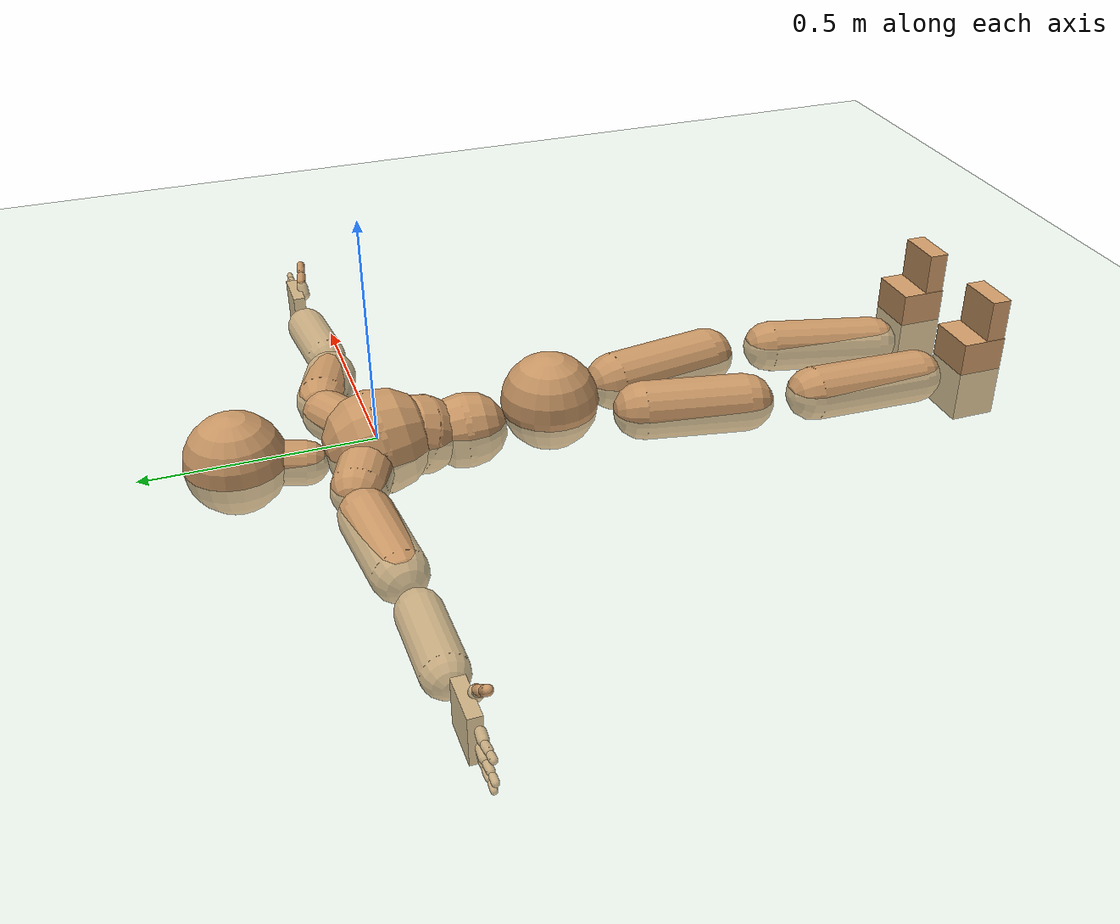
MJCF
<mujoco model="humanoid">
  <compiler coordinate="local"/>
  <default>
    <joint damping="0.0" armature="0.01" stiffness="0.0" limited="true"/>
    <geom conaffinity="1" condim="3" contype="7" margin="0.001" rgba="0.8 0.6 .4 1"/>
  </default>
  <asset>
    <texture type="skybox" builtin="gradient" rgb1=".4 .5 .6" rgb2="0 0 0" width="100" height="100"/>
    <texture builtin="flat" height="1278" mark="cross" markrgb="1 1 1" name="texgeom" random="0.01" rgb1="0.8 0.6 0.4" rgb2="0.8 0.6 0.4" type="cube" width="127"/>
    <texture builtin="checker" height="100" name="texplane" rgb1="0 0 0" rgb2="0.8 0.8 0.8" type="2d" width="100"/>
    <material name="MatPlane" reflectance="0.5" shininess="1" specular="1" texrepeat="60 60" texture="texplane"/>
    <material name="geom" texture="texgeom" texuniform="true"/>
  </asset>
  <worldbody>
    <light cutoff="100" diffuse="1 1 1" dir="-0 0 -1.3" directional="true" exponent="1" pos="0 0 1.3" specular=".1 .1 .1"/>
    <geom conaffinity="1" condim="3" name="floor" pos="0 0 0" rgba="0.8 0.9 0.8 1" size="100 100 .2" type="plane" material="MatPlane"/>
    <body name="Pelvis" pos="0.0029 -0.3917 0.0132">
      <freejoint name="Pelvis"/>
      <geom type="sphere" contype="1" conaffinity="1" density="4629.6296296296305" size="0.1095" pos="0.0000 0.0000 0.0000" name="Pelvis"/>
      <body name="L_Hip" pos="0.0608 -0.0999 -0.0266">
        <joint name="L_Hip_x" type="hinge" pos="0 0 0" axis="1 0 0" user="250 2.5 1 500 10 2" armature="0.01" range="-90.0000 90.0000" damping="0" stiffness="0"/>
        <joint name="L_Hip_y" type="hinge" pos="0 0 0" axis="0 1 0" user="250 2.5 1 500 10 2" armature="0.01" range="-90.0000 90.0000" damping="0" stiffness="0"/>
        <joint name="L_Hip_z" type="hinge" pos="0 0 0" axis="0 0 1" user="250 2.5 1 500 10 2" armature="0.01" range="-90.0000 90.0000" damping="0" stiffness="0"/>
        <geom type="capsule" contype="1" conaffinity="1" density="2040.816327" fromto="0.0134 -0.0824 -0.0005 0.0535 -0.3294 -0.0019" size="0.0664" name="L_Hip"/>
        <body name="L_Knee" pos="0.0669 -0.4118 -0.0024">
          <joint name="L_Knee_x" type="hinge" pos="0 0 0" axis="1 0 0" user="250 2.5 1 500 10 2" armature="0.01" range="-180.0000 180.0000" damping="0" stiffness="0"/>
          <joint name="L_Knee_y" type="hinge" pos="0 0 0" axis="0 1 0" user="250 2.5 1 500 10 2" armature="0.01" range="-5.6250 5.6250" damping="0" stiffness="0"/>
          <joint name="L_Knee_z" type="hinge" pos="0 0 0" axis="0 0 1" user="250 2.5 1 500 10 2" armature="0.01" range="-5.6250 5.6250" damping="0" stiffness="0"/>
          <geom type="capsule" contype="1" conaffinity="1" density="1234.567901" fromto="-0.0096 -0.0893 -0.0068 -0.0384 -0.3572 -0.0272" size="0.06" name="L_Knee"/>
          <body name="L_Ankle" pos="-0.048 -0.4465 -0.034">
            <joint name="L_Ankle_x" type="hinge" pos="0 0 0" axis="1 0 0" user="150 2.5 1 500 10 2" armature="0.01" range="-90.0000 90.0000" damping="0" stiffness="0"/>
            <joint name="L_Ankle_y" type="hinge" pos="0 0 0" axis="0 1 0" user="150 2.5 1 500 10 2" armature="0.01" range="-90.0000 90.0000" damping="0" stiffness="0"/>
            <joint name="L_Ankle_z" type="hinge" pos="0 0 0" axis="0 0 1" user="150 2.5 1 500 10 2" armature="0.01" range="-90.0000 90.0000" damping="0" stiffness="0"/>
            <geom type="box" density="462.488307" pos="0.0476 -0.0333 0.0260" size="0.0572 0.0522 0.0985" quat="1.0000 0.0000 0.0000 0.0000" name="L_Ankle"/>
            <body name="L_Toe" pos="0.055 -0.0658 0.1346">
              <joint name="L_Toe_x" type="hinge" pos="0 0 0" axis="1 0 0" user="150 1 1 500 1 1" armature="0.01" range="-90.0000 90.0000" damping="0" stiffness="0"/>
              <joint name="L_Toe_y" type="hinge" pos="0 0 0" axis="0 1 0" user="150 1 1 500 1 1" armature="0.01" range="-45.0000 45.0000" damping="0" stiffness="0"/>
              <joint name="L_Toe_z" type="hinge" pos="0 0 0" axis="0 0 1" user="150 1 1 500 1 1" armature="0.01" range="-45.0000 45.0000" damping="0" stiffness="0"/>
              <geom type="box" density="423.126218" pos="-0.0074 0.0034 0.0293" size="0.0544 0.0231 0.0566" quat="1.0000 0.0000 0.0000 0.0000" name="L_Toe"/>
            </body>
          </body>
        </body>
      </body>
      <body name="R_Hip" pos="-0.0658 -0.1135 -0.0188">
        <joint name="R_Hip_x" type="hinge" pos="0 0 0" axis="1 0 0" user="250 2.5 1 500 10 2" armature="0.01" range="-90.0000 90.0000" damping="0" stiffness="0"/>
        <joint name="R_Hip_y" type="hinge" pos="0 0 0" axis="0 1 0" user="250 2.5 1 500 10 2" armature="0.01" range="-90.0000 90.0000" damping="0" stiffness="0"/>
        <joint name="R_Hip_z" type="hinge" pos="0 0 0" axis="0 0 1" user="250 2.5 1 500 10 2" armature="0.01" range="-90.0000 90.0000" damping="0" stiffness="0"/>
        <geom type="capsule" contype="1" conaffinity="1" density="2040.816327" fromto="-0.0110 -0.0784 -0.0025 -0.0440 -0.3137 -0.0102" size="0.0658" name="R_Hip"/>
        <body name="R_Knee" pos="-0.055 -0.3921 -0.0127">
          <joint name="R_Knee_x" type="hinge" pos="0 0 0" axis="1 0 0" user="250 2.5 1 500 10 2" armature="0.01" range="-180.0000 180.0000" damping="0" stiffness="0"/>
          <joint name="R_Knee_y" type="hinge" pos="0 0 0" axis="0 1 0" user="250 2.5 1 500 10 2" armature="0.01" range="-5.6250 5.6250" damping="0" stiffness="0"/>
          <joint name="R_Knee_z" type="hinge" pos="0 0 0" axis="0 0 1" user="250 2.5 1 500 10 2" armature="0.01" range="-5.6250 5.6250" damping="0" stiffness="0"/>
          <geom type="capsule" contype="1" conaffinity="1" density="1234.567901" fromto="0.0031 -0.0911 -0.0042 0.0124 -0.3644 -0.0166" size="0.0618" name="R_Knee"/>
          <body name="R_Ankle" pos="0.0154 -0.4555 -0.0208">
            <joint name="R_Ankle_x" type="hinge" pos="0 0 0" axis="1 0 0" user="150 1 1 500 10 2" armature="0.01" range="-90.0000 90.0000" damping="0" stiffness="0"/>
            <joint name="R_Ankle_y" type="hinge" pos="0 0 0" axis="0 1 0" user="150 1 1 500 10 2" armature="0.01" range="-90.0000 90.0000" damping="0" stiffness="0"/>
            <joint name="R_Ankle_z" type="hinge" pos="0 0 0" axis="0 0 1" user="150 1 1 500 10 2" armature="0.01" range="-90.0000 90.0000" damping="0" stiffness="0"/>
            <geom type="box" density="462.482206" pos="-0.0279 -0.0302 0.0153" size="0.0572 0.0522 0.0985" quat="1.0000 0.0000 0.0000 0.0000" name="R_Ankle"/>
            <body name="R_Toe" pos="-0.0442 -0.0655 0.1353">
              <joint name="R_Toe_x" type="hinge" pos="0 0 0" axis="1 0 0" user="150 1 1 500 1 1" armature="0.01" range="-90.0000 90.0000" damping="0" stiffness="0"/>
              <joint name="R_Toe_y" type="hinge" pos="0 0 0" axis="0 1 0" user="150 1 1 500 1 1" armature="0.01" range="-45.0000 45.0000" damping="0" stiffness="0"/>
              <joint name="R_Toe_z" type="hinge" pos="0 0 0" axis="0 0 1" user="150 1 1 500 1 1" armature="0.01" range="-45.0000 45.0000" damping="0" stiffness="0"/>
              <geom type="box" density="423.107508" pos="0.0163 0.0061 0.0180" size="0.0544 0.0231 0.0566" quat="1.0000 0.0000 0.0000 0.0000" name="R_Toe"/>
            </body>
          </body>
        </body>
      </body>
      <body name="Torso" pos="-0.0036 0.1194 -0.034">
        <joint name="Torso_x" type="hinge" pos="0 0 0" axis="1 0 0" user="500 5 1 500 10 2" armature="0.01" range="-60.0000 60.0000" damping="0" stiffness="0"/>
        <joint name="Torso_y" type="hinge" pos="0 0 0" axis="0 1 0" user="500 5 1 500 10 2" armature="0.01" range="-60.0000 60.0000" damping="0" stiffness="0"/>
        <joint name="Torso_z" type="hinge" pos="0 0 0" axis="0 0 1" user="500 5 1 500 10 2" armature="0.01" range="-60.0000 60.0000" damping="0" stiffness="0"/>
        <geom type="capsule" contype="1" conaffinity="1" density="2040.816327" fromto="0.0056 0.0659 -0.0037 0.0068 0.0805 -0.0046" size="0.0832" name="Torso"/>
        <body name="Spine" pos="0.0123 0.1464 -0.0083">
          <joint name="Spine_x" type="hinge" pos="0 0 0" axis="1 0 0" user="500 5 1 500 10 2" armature="0.01" range="-60.0000 60.0000" damping="0" stiffness="0"/>
          <joint name="Spine_y" type="hinge" pos="0 0 0" axis="0 1 0" user="500 5 1 500 10 2" armature="0.01" range="-60.0000 60.0000" damping="0" stiffness="0"/>
          <joint name="Spine_z" type="hinge" pos="0 0 0" axis="0 0 1" user="500 5 1 500 10 2" armature="0.01" range="-60.0000 60.0000" damping="0" stiffness="0"/>
          <geom type="capsule" contype="1" conaffinity="1" density="2040.816327" fromto="-0.0055 0.0280 0.0135 -0.0067 0.0342 0.0165" size="0.0879" name="Spine"/>
          <body name="Chest" pos="-0.0122 0.0622 0.03">
            <joint name="Chest_x" type="hinge" pos="0 0 0" axis="1 0 0" user="500 5 1 500 10 2" armature="0.01" range="-60.0000 60.0000" damping="0" stiffness="0"/>
            <joint name="Chest_y" type="hinge" pos="0 0 0" axis="0 1 0" user="500 5 1 500 10 2" armature="0.01" range="-60.0000 60.0000" damping="0" stiffness="0"/>
            <joint name="Chest_z" type="hinge" pos="0 0 0" axis="0 0 1" user="500 5 1 500 10 2" armature="0.01" range="-60.0000 60.0000" damping="0" stiffness="0"/>
            <geom type="capsule" contype="1" conaffinity="1" density="2040.816327" fromto="-0.0027 0.0557 -0.0067 -0.0033 0.0681 -0.0081" size="0.115" name="Chest"/>
            <body name="Neck" pos="-0.0144 0.1838 -0.0285">
              <joint name="Neck_x" type="hinge" pos="0 0 0" axis="1 0 0" user="150 1 1 250 50 4" armature="0.01" range="-180.0000 180.0000" damping="0" stiffness="0"/>
              <joint name="Neck_y" type="hinge" pos="0 0 0" axis="0 1 0" user="150 1 1 250 50 4" armature="0.01" range="-180.0000 180.0000" damping="0" stiffness="0"/>
              <joint name="Neck_z" type="hinge" pos="0 0 0" axis="0 0 1" user="150 1 1 250 50 4" armature="0.01" range="-180.0000 180.0000" damping="0" stiffness="0"/>
              <geom type="capsule" contype="1" conaffinity="1" density="1000" fromto="0.0057 0.0356 0.0047 0.0228 0.1425 0.0190" size="0.0481" name="Neck"/>
              <body name="Head" pos="0.0285 0.1781 0.0237">
                <joint name="Head_x" type="hinge" pos="0 0 0" axis="1 0 0" user="150 1 1 250 50 4" armature="0.01" range="-90.0000 90.0000" damping="0" stiffness="0"/>
                <joint name="Head_y" type="hinge" pos="0 0 0" axis="0 1 0" user="150 1 1 250 50 4" armature="0.01" range="-90.0000 90.0000" damping="0" stiffness="0"/>
                <joint name="Head_z" type="hinge" pos="0 0 0" axis="0 0 1" user="150 1 1 250 50 4" armature="0.01" range="-90.0000 90.0000" damping="0" stiffness="0"/>
                <geom type="sphere" contype="1" conaffinity="1" density="1000" size="0.1100" pos="0.0000 0.0000 0.0000" name="Head"/>
              </body>
            </body>
            <body name="L_Thorax" pos="0.0497 0.0944 -0.0045">
              <joint name="L_Thorax_x" type="hinge" pos="0 0 0" axis="1 0 0" user="200 2 1 500 50 4" armature="0.01" range="-180.0000 180.0000" damping="0" stiffness="0"/>
              <joint name="L_Thorax_y" type="hinge" pos="0 0 0" axis="0 1 0" user="200 2 1 500 50 4" armature="0.01" range="-180.0000 180.0000" damping="0" stiffness="0"/>
              <joint name="L_Thorax_z" type="hinge" pos="0 0 0" axis="0 0 1" user="200 2 1 500 50 4" armature="0.01" range="-180.0000 180.0000" damping="0" stiffness="0"/>
              <geom type="capsule" contype="1" conaffinity="1" density="1000" fromto="0.0274 0.0117 -0.0035 0.1096 0.0467 -0.0141" size="0.0558" name="L_Thorax"/>
              <body name="L_Shoulder" pos="0.137 0.0584 -0.0176">
                <joint name="L_Shoulder_x" type="hinge" pos="0 0 0" axis="1 0 0" user="200 2 1 500 50 4" armature="0.01" range="-180.0000 180.0000" damping="0" stiffness="0"/>
                <joint name="L_Shoulder_y" type="hinge" pos="0 0 0" axis="0 1 0" user="200 2 1 500 50 4" armature="0.01" range="-180.0000 180.0000" damping="0" stiffness="0"/>
                <joint name="L_Shoulder_z" type="hinge" pos="0 0 0" axis="0 0 1" user="200 2 1 500 50 4" armature="0.01" range="-180.0000 180.0000" damping="0" stiffness="0"/>
                <geom type="capsule" contype="1" conaffinity="1" density="1000" fromto="0.0549 -0.0158 -0.0102 0.2197 -0.0634 -0.0409" size="0.0598" name="L_Shoulder"/>
                <body name="L_Elbow" pos="0.2747 -0.0792 -0.0511">
                  <joint name="L_Elbow_x" type="hinge" pos="0 0 0" axis="1 0 0" user="150 1 1 150 10 2" armature="0.01" range="-720.0000 720.0000" damping="0" stiffness="0"/>
                  <joint name="L_Elbow_y" type="hinge" pos="0 0 0" axis="0 1 0" user="150 1 1 150 10 2" armature="0.01" range="-720.0000 720.0000" damping="0" stiffness="0"/>
                  <joint name="L_Elbow_z" type="hinge" pos="0 0 0" axis="0 0 1" user="150 1 1 150 10 2" armature="0.01" range="-720.0000 720.0000" damping="0" stiffness="0"/>
                  <geom type="capsule" contype="1" conaffinity="1" density="1000" fromto="0.0572 0.0053 0.0005 0.2287 0.0214 0.0020" size="0.0476" name="L_Elbow"/>
                  <body name="L_Wrist" pos="0.2859 0.0267 0.0025">
                    <joint name="L_Wrist_x" type="hinge" pos="0 0 0" axis="1 0 0" user="100 1 1 150 1 1" armature="0.01" range="-180.0000 180.0000" damping="0" stiffness="0"/>
                    <joint name="L_Wrist_y" type="hinge" pos="0 0 0" axis="0 1 0" user="100 1 1 150 1 1" armature="0.01" range="-180.0000 180.0000" damping="0" stiffness="0"/>
                    <joint name="L_Wrist_z" type="hinge" pos="0 0 0" axis="0 0 1" user="100 1 1 150 1 1" armature="0.01" range="-180.0000 180.0000" damping="0" stiffness="0"/>
                    <geom type="box" density="1218.746184" pos="0.0613 -0.0019 -0.0030" size="0.0563 0.0145 0.0535" quat="1.0000 0.0000 0.0000 0.0000" name="L_Wrist"/>
                    <body name="L_Index1" pos="0.1188 -0.0088 0.0227">
                      <joint name="L_Index1_x" type="hinge" pos="0 0 0" axis="1 0 0" user="100 10 1 150" armature="0.01" range="-180.0000 180.0000" damping="0" stiffness="0"/>
                      <joint name="L_Index1_y" type="hinge" pos="0 0 0" axis="0 1 0" user="100 10 1 150" armature="0.01" range="-180.0000 180.0000" damping="0" stiffness="0"/>
                      <joint name="L_Index1_z" type="hinge" pos="0 0 0" axis="0 0 1" user="100 10 1 150" armature="0.01" range="-180.0000 180.0000" damping="0" stiffness="0"/>
                      <geom type="capsule" contype="1" conaffinity="1" density="1000" fromto="0.0071 0.0006 0.0006 0.0283 0.0023 0.0024" size="0.0105" name="L_Index1"/>
                      <body name="L_Index2" pos="0.0354 0.0029 0.0031">
                        <joint name="L_Index2_x" type="hinge" pos="0 0 0" axis="1 0 0" user="100 10 1 150" armature="0.01" range="-180.0000 180.0000" damping="0" stiffness="0"/>
                        <joint name="L_Index2_y" type="hinge" pos="0 0 0" axis="0 1 0" user="100 10 1 150" armature="0.01" range="-180.0000 180.0000" damping="0" stiffness="0"/>
                        <joint name="L_Index2_z" type="hinge" pos="0 0 0" axis="0 0 1" user="100 10 1 150" armature="0.01" range="-180.0000 180.0000" damping="0" stiffness="0"/>
                        <geom type="capsule" contype="1" conaffinity="1" density="1000" fromto="0.0050 -0.0005 -0.0001 0.0199 -0.0021 -0.0003" size="0.0087" name="L_Index2"/>
                        <body name="L_Index3" pos="0.0249 -0.0026 -0.0003">
                          <joint name="L_Index3_x" type="hinge" pos="0 0 0" axis="1 0 0" user="100 10 1 150" armature="0.01" range="-180.0000 180.0000" damping="0" stiffness="0"/>
                          <joint name="L_Index3_y" type="hinge" pos="0 0 0" axis="0 1 0" user="100 10 1 150" armature="0.01" range="-180.0000 180.0000" damping="0" stiffness="0"/>
                          <joint name="L_Index3_z" type="hinge" pos="0 0 0" axis="0 0 1" user="100 10 1 150" armature="0.01" range="-180.0000 180.0000" damping="0" stiffness="0"/>
                          <geom type="capsule" contype="1" conaffinity="1" density="1000" fromto="0.0054 -0.0001 0.0003 0.0215 -0.0005 0.0013" size="0.0073" name="L_Index3"/>
                        </body>
                      </body>
                    </body>
                    <body name="L_Middle1" pos="0.1277 -0.0061 -0.0046">
                      <joint name="L_Middle1_x" type="hinge" pos="0 0 0" axis="1 0 0" user="100 10 1 150" armature="0.01" range="-180.0000 180.0000" damping="0" stiffness="0"/>
                      <joint name="L_Middle1_y" type="hinge" pos="0 0 0" axis="0 1 0" user="100 10 1 150" armature="0.01" range="-180.0000 180.0000" damping="0" stiffness="0"/>
                      <joint name="L_Middle1_z" type="hinge" pos="0 0 0" axis="0 0 1" user="100 10 1 150" armature="0.01" range="-180.0000 180.0000" damping="0" stiffness="0"/>
                      <geom type="capsule" contype="1" conaffinity="1" density="1000" fromto="0.0068 0.0002 -0.0009 0.0272 0.0007 -0.0035" size="0.0109" name="L_Middle1"/>
                      <body name="L_Middle2" pos="0.034 0.0009 -0.0044">
                        <joint name="L_Middle2_x" type="hinge" pos="0 0 0" axis="1 0 0" user="100 10 1 150" armature="0.01" range="-180.0000 180.0000" damping="0" stiffness="0"/>
                        <joint name="L_Middle2_y" type="hinge" pos="0 0 0" axis="0 1 0" user="100 10 1 150" armature="0.01" range="-180.0000 180.0000" damping="0" stiffness="0"/>
                        <joint name="L_Middle2_z" type="hinge" pos="0 0 0" axis="0 0 1" user="100 10 1 150" armature="0.01" range="-180.0000 180.0000" damping="0" stiffness="0"/>
                        <geom type="capsule" contype="1" conaffinity="1" density="1000" fromto="0.0052 -0.0005 -0.0009 0.0208 -0.0020 -0.0037" size="0.0081" name="L_Middle2"/>
                        <body name="L_Middle3" pos="0.0259 -0.0025 -0.0047">
                          <joint name="L_Middle3_x" type="hinge" pos="0 0 0" axis="1 0 0" user="100 10 1 150" armature="0.01" range="-180.0000 180.0000" damping="0" stiffness="0"/>
                          <joint name="L_Middle3_y" type="hinge" pos="0 0 0" axis="0 1 0" user="100 10 1 150" armature="0.01" range="-180.0000 180.0000" damping="0" stiffness="0"/>
                          <joint name="L_Middle3_z" type="hinge" pos="0 0 0" axis="0 0 1" user="100 10 1 150" armature="0.01" range="-180.0000 180.0000" damping="0" stiffness="0"/>
                          <geom type="capsule" contype="1" conaffinity="1" density="1000" fromto="0.0056 -0.0001 -0.0005 0.0224 -0.0004 -0.0021" size="0.007" name="L_Middle3"/>
                        </body>
                      </body>
                    </body>
                    <body name="L_Pinky1" pos="0.099 -0.0158 -0.0508">
                      <joint name="L_Pinky1_x" type="hinge" pos="0 0 0" axis="1 0 0" user="100 10 1 150" armature="0.01" range="-180.0000 180.0000" damping="0" stiffness="0"/>
                      <joint name="L_Pinky1_y" type="hinge" pos="0 0 0" axis="0 1 0" user="100 10 1 150" armature="0.01" range="-180.0000 180.0000" damping="0" stiffness="0"/>
                      <joint name="L_Pinky1_z" type="hinge" pos="0 0 0" axis="0 0 1" user="100 10 1 150" armature="0.01" range="-180.0000 180.0000" damping="0" stiffness="0"/>
                      <geom type="capsule" contype="1" conaffinity="1" density="1000" fromto="0.0036 -0.0003 -0.0027 0.0145 -0.0012 -0.0107" size="0.0076" name="L_Pinky1"/>
                      <body name="L_Pinky2" pos="0.0182 -0.0016 -0.0134">
                        <joint name="L_Pinky2_x" type="hinge" pos="0 0 0" axis="1 0 0" user="100 10 1 150" armature="0.01" range="-180.0000 180.0000" damping="0" stiffness="0"/>
                        <joint name="L_Pinky2_y" type="hinge" pos="0 0 0" axis="0 1 0" user="100 10 1 150" armature="0.01" range="-180.0000 180.0000" damping="0" stiffness="0"/>
                        <joint name="L_Pinky2_z" type="hinge" pos="0 0 0" axis="0 0 1" user="100 10 1 150" armature="0.01" range="-180.0000 180.0000" damping="0" stiffness="0"/>
                        <geom type="capsule" contype="1" conaffinity="1" density="1000" fromto="0.0035 -0.0004 -0.0024 0.0141 -0.0018 -0.0098" size="0.0072" name="L_Pinky2"/>
                        <body name="L_Pinky3" pos="0.0176 -0.0022 -0.0122">
                          <joint name="L_Pinky3_x" type="hinge" pos="0 0 0" axis="1 0 0" user="100 10 1 150" armature="0.01" range="-180.0000 180.0000" damping="0" stiffness="0"/>
                          <joint name="L_Pinky3_y" type="hinge" pos="0 0 0" axis="0 1 0" user="100 10 1 150" armature="0.01" range="-180.0000 180.0000" damping="0" stiffness="0"/>
                          <joint name="L_Pinky3_z" type="hinge" pos="0 0 0" axis="0 0 1" user="100 10 1 150" armature="0.01" range="-180.0000 180.0000" damping="0" stiffness="0"/>
                          <geom type="capsule" contype="1" conaffinity="1" density="1000" fromto="0.0039 -0.0000 -0.0020 0.0157 -0.0002 -0.0082" size="0.0055" name="L_Pinky3"/>
                        </body>
                      </body>
                    </body>
                    <body name="L_Ring1" pos="0.1144 -0.0096 -0.0319">
                      <joint name="L_Ring1_x" type="hinge" pos="0 0 0" axis="1 0 0" user="100 10 1 150" armature="0.01" range="-180.0000 180.0000" damping="0" stiffness="0"/>
                      <joint name="L_Ring1_y" type="hinge" pos="0 0 0" axis="0 1 0" user="100 10 1 150" armature="0.01" range="-180.0000 180.0000" damping="0" stiffness="0"/>
                      <joint name="L_Ring1_z" type="hinge" pos="0 0 0" axis="0 0 1" user="100 10 1 150" armature="0.01" range="-180.0000 180.0000" damping="0" stiffness="0"/>
                      <geom type="capsule" contype="1" conaffinity="1" density="1000" fromto="0.0064 0.0004 -0.0012 0.0255 0.0015 -0.0047" size="0.0091" name="L_Ring1"/>
                      <body name="L_Ring2" pos="0.0319 0.0018 -0.0059">
                        <joint name="L_Ring2_x" type="hinge" pos="0 0 0" axis="1 0 0" user="100 10 1 150" armature="0.01" range="-180.0000 180.0000" damping="0" stiffness="0"/>
                        <joint name="L_Ring2_y" type="hinge" pos="0 0 0" axis="0 1 0" user="100 10 1 150" armature="0.01" range="-180.0000 180.0000" damping="0" stiffness="0"/>
                        <joint name="L_Ring2_z" type="hinge" pos="0 0 0" axis="0 0 1" user="100 10 1 150" armature="0.01" range="-180.0000 180.0000" damping="0" stiffness="0"/>
                        <geom type="capsule" contype="1" conaffinity="1" density="1000" fromto="0.0051 -0.0004 -0.0016 0.0204 -0.0015 -0.0063" size="0.0084" name="L_Ring2"/>
                        <body name="L_Ring3" pos="0.0255 -0.0018 -0.0079">
                          <joint name="L_Ring3_x" type="hinge" pos="0 0 0" axis="1 0 0" user="100 10 1 150" armature="0.01" range="-180.0000 180.0000" damping="0" stiffness="0"/>
                          <joint name="L_Ring3_y" type="hinge" pos="0 0 0" axis="0 1 0" user="100 10 1 150" armature="0.01" range="-180.0000 180.0000" damping="0" stiffness="0"/>
                          <joint name="L_Ring3_z" type="hinge" pos="0 0 0" axis="0 0 1" user="100 10 1 150" armature="0.01" range="-180.0000 180.0000" damping="0" stiffness="0"/>
                          <geom type="capsule" contype="1" conaffinity="1" density="1000" fromto="0.0055 0.0000 -0.0012 0.0220 0.0001 -0.0047" size="0.0066" name="L_Ring3"/>
                        </body>
                      </body>
                    </body>
                    <body name="L_Thumb1" pos="0.0479 -0.0215 0.0313">
                      <joint name="L_Thumb1_x" type="hinge" pos="0 0 0" axis="1 0 0" user="100 10 1 150" armature="0.01" range="-180.0000 180.0000" damping="0" stiffness="0"/>
                      <joint name="L_Thumb1_y" type="hinge" pos="0 0 0" axis="0 1 0" user="100 10 1 150" armature="0.01" range="-180.0000 180.0000" damping="0" stiffness="0"/>
                      <joint name="L_Thumb1_z" type="hinge" pos="0 0 0" axis="0 0 1" user="100 10 1 150" armature="0.01" range="-180.0000 180.0000" damping="0" stiffness="0"/>
                      <geom type="capsule" contype="1" conaffinity="1" density="1000" fromto="0.0038 0.0003 0.0058 0.0154 0.0012 0.0233" size="0.0142" name="L_Thumb1"/>
                      <body name="L_Thumb2" pos="0.0192 0.0015 0.0292">
                        <joint name="L_Thumb2_x" type="hinge" pos="0 0 0" axis="1 0 0" user="100 10 1 150" armature="0.01" range="-180.0000 180.0000" damping="0" stiffness="0"/>
                        <joint name="L_Thumb2_y" type="hinge" pos="0 0 0" axis="0 1 0" user="100 10 1 150" armature="0.01" range="-180.0000 180.0000" damping="0" stiffness="0"/>
                        <joint name="L_Thumb2_z" type="hinge" pos="0 0 0" axis="0 0 1" user="100 10 1 150" armature="0.01" range="-180.0000 180.0000" damping="0" stiffness="0"/>
                        <geom type="capsule" contype="1" conaffinity="1" density="1000" fromto="0.0046 -0.0012 0.0035 0.0184 -0.0047 0.0141" size="0.0112" name="L_Thumb2"/>
                        <body name="L_Thumb3" pos="0.023 -0.0059 0.0176">
                          <joint name="L_Thumb3_x" type="hinge" pos="0 0 0" axis="1 0 0" user="100 10 1 150" armature="0.01" range="-180.0000 180.0000" damping="0" stiffness="0"/>
                          <joint name="L_Thumb3_y" type="hinge" pos="0 0 0" axis="0 1 0" user="100 10 1 150" armature="0.01" range="-180.0000 180.0000" damping="0" stiffness="0"/>
                          <joint name="L_Thumb3_z" type="hinge" pos="0 0 0" axis="0 0 1" user="100 10 1 150" armature="0.01" range="-180.0000 180.0000" damping="0" stiffness="0"/>
                          <geom type="capsule" contype="1" conaffinity="1" density="1000" fromto="0.0050 -0.0008 0.0039 0.0200 -0.0031 0.0157" size="0.01" name="L_Thumb3"/>
                        </body>
                      </body>
                    </body>
                  </body>
                </body>
              </body>
            </body>
            <body name="R_Thorax" pos="-0.0531 0.0931 -0.0114">
              <joint name="R_Thorax_x" type="hinge" pos="0 0 0" axis="1 0 0" user="200 2 1 150 10 2" armature="0.01" range="-180.0000 180.0000" damping="0" stiffness="0"/>
              <joint name="R_Thorax_y" type="hinge" pos="0 0 0" axis="0 1 0" user="200 2 1 150 10 2" armature="0.01" range="-180.0000 180.0000" damping="0" stiffness="0"/>
              <joint name="R_Thorax_z" type="hinge" pos="0 0 0" axis="0 0 1" user="200 2 1 150 10 2" armature="0.01" range="-180.0000 180.0000" damping="0" stiffness="0"/>
              <geom type="capsule" contype="1" conaffinity="1" density="1000" fromto="-0.0238 0.0109 -0.0029 -0.0952 0.0437 -0.0117" size="0.061" name="R_Thorax"/>
              <body name="R_Shoulder" pos="-0.119 0.0547 -0.0147">
                <joint name="R_Shoulder_x" type="hinge" pos="0 0 0" axis="1 0 0" user="200 2 1 250 10 2" armature="0.01" range="-180.0000 180.0000" damping="0" stiffness="0"/>
                <joint name="R_Shoulder_y" type="hinge" pos="0 0 0" axis="0 1 0" user="200 2 1 250 10 2" armature="0.01" range="-180.0000 180.0000" damping="0" stiffness="0"/>
                <joint name="R_Shoulder_z" type="hinge" pos="0 0 0" axis="0 0 1" user="200 2 1 250 10 2" armature="0.01" range="-180.0000 180.0000" damping="0" stiffness="0"/>
                <geom type="capsule" contype="1" conaffinity="1" density="1000" fromto="-0.0588 -0.0076 -0.0066 -0.2354 -0.0306 -0.0263" size="0.0597" name="R_Shoulder"/>
                <body name="R_Elbow" pos="-0.2942 -0.0382 -0.0328">
                  <joint name="R_Elbow_x" type="hinge" pos="0 0 0" axis="1 0 0" user="150 1 1 150 10 2" armature="0.01" range="-720.0000 720.0000" damping="0" stiffness="0"/>
                  <joint name="R_Elbow_y" type="hinge" pos="0 0 0" axis="0 1 0" user="150 1 1 150 10 2" armature="0.01" range="-720.0000 720.0000" damping="0" stiffness="0"/>
                  <joint name="R_Elbow_z" type="hinge" pos="0 0 0" axis="0 0 1" user="150 1 1 150 10 2" armature="0.01" range="-720.0000 720.0000" damping="0" stiffness="0"/>
                  <geom type="capsule" contype="1" conaffinity="1" density="1000" fromto="-0.0564 -0.0012 -0.0024 -0.2256 -0.0047 -0.0096" size="0.048" name="R_Elbow"/>
                  <body name="R_Wrist" pos="-0.282 -0.0059 -0.012">
                    <joint name="R_Wrist_x" type="hinge" pos="0 0 0" axis="1 0 0" user="100 1 1 150 1 1" armature="0.01" range="-180.0000 180.0000" damping="0" stiffness="0"/>
                    <joint name="R_Wrist_y" type="hinge" pos="0 0 0" axis="0 1 0" user="100 1 1 150 1 1" armature="0.01" range="-180.0000 180.0000" damping="0" stiffness="0"/>
                    <joint name="R_Wrist_z" type="hinge" pos="0 0 0" axis="0 0 1" user="100 1 1 150 1 1" armature="0.01" range="-180.0000 180.0000" damping="0" stiffness="0"/>
                    <geom type="box" density="1239.898319" pos="-0.0625 -0.0053 -0.0027" size="0.0534 0.0145 0.0535" quat="1.0000 0.0000 0.0000 0.0000" name="R_Wrist"/>
                    <body name="R_Index1" pos="-0.1167 -0.0122 0.0229">
                      <joint name="R_Index1_x" type="hinge" pos="0 0 0" axis="1 0 0" user="100 10 1 150" armature="0.01" range="-180.0000 180.0000" damping="0" stiffness="0"/>
                      <joint name="R_Index1_y" type="hinge" pos="0 0 0" axis="0 1 0" user="100 10 1 150" armature="0.01" range="-180.0000 180.0000" damping="0" stiffness="0"/>
                      <joint name="R_Index1_z" type="hinge" pos="0 0 0" axis="0 0 1" user="100 10 1 150" armature="0.01" range="-180.0000 180.0000" damping="0" stiffness="0"/>
                      <geom type="capsule" contype="1" conaffinity="1" density="1000" fromto="-0.0071 0.0006 0.0006 -0.0283 0.0023 0.0025" size="0.0105" name="R_Index1"/>
                      <body name="R_Index2" pos="-0.0354 0.0029 0.0031">
                        <joint name="R_Index2_x" type="hinge" pos="0 0 0" axis="1 0 0" user="100 10 1 150" armature="0.01" range="-180.0000 180.0000" damping="0" stiffness="0"/>
                        <joint name="R_Index2_y" type="hinge" pos="0 0 0" axis="0 1 0" user="100 10 1 150" armature="0.01" range="-180.0000 180.0000" damping="0" stiffness="0"/>
                        <joint name="R_Index2_z" type="hinge" pos="0 0 0" axis="0 0 1" user="100 10 1 150" armature="0.01" range="-180.0000 180.0000" damping="0" stiffness="0"/>
                        <geom type="capsule" contype="1" conaffinity="1" density="1000" fromto="-0.0050 -0.0005 -0.0001 -0.0199 -0.0021 -0.0003" size="0.0087" name="R_Index2"/>
                        <body name="R_Index3" pos="-0.0249 -0.0026 -0.0003">
                          <joint name="R_Index3_x" type="hinge" pos="0 0 0" axis="1 0 0" user="100 10 1 150" armature="0.01" range="-180.0000 180.0000" damping="0" stiffness="0"/>
                          <joint name="R_Index3_y" type="hinge" pos="0 0 0" axis="0 1 0" user="100 10 1 150" armature="0.01" range="-180.0000 180.0000" damping="0" stiffness="0"/>
                          <joint name="R_Index3_z" type="hinge" pos="0 0 0" axis="0 0 1" user="100 10 1 150" armature="0.01" range="-180.0000 180.0000" damping="0" stiffness="0"/>
                          <geom type="capsule" contype="1" conaffinity="1" density="1000" fromto="-0.0046 -0.0001 0.0003 -0.0183 -0.0005 0.0013" size="0.0076" name="R_Index3"/>
                        </body>
                      </body>
                    </body>
                    <body name="R_Middle1" pos="-0.1256 -0.0096 -0.0044">
                      <joint name="R_Middle1_x" type="hinge" pos="0 0 0" axis="1 0 0" user="100 10 1 150" armature="0.01" range="-180.0000 180.0000" damping="0" stiffness="0"/>
                      <joint name="R_Middle1_y" type="hinge" pos="0 0 0" axis="0 1 0" user="100 10 1 150" armature="0.01" range="-180.0000 180.0000" damping="0" stiffness="0"/>
                      <joint name="R_Middle1_z" type="hinge" pos="0 0 0" axis="0 0 1" user="100 10 1 150" armature="0.01" range="-180.0000 180.0000" damping="0" stiffness="0"/>
                      <geom type="capsule" contype="1" conaffinity="1" density="1000" fromto="-0.0068 0.0002 -0.0009 -0.0272 0.0007 -0.0035" size="0.0109" name="R_Middle1"/>
                      <body name="R_Middle2" pos="-0.034 0.0009 -0.0044">
                        <joint name="R_Middle2_x" type="hinge" pos="0 0 0" axis="1 0 0" user="100 10 1 150" armature="0.01" range="-180.0000 180.0000" damping="0" stiffness="0"/>
                        <joint name="R_Middle2_y" type="hinge" pos="0 0 0" axis="0 1 0" user="100 10 1 150" armature="0.01" range="-180.0000 180.0000" damping="0" stiffness="0"/>
                        <joint name="R_Middle2_z" type="hinge" pos="0 0 0" axis="0 0 1" user="100 10 1 150" armature="0.01" range="-180.0000 180.0000" damping="0" stiffness="0"/>
                        <geom type="capsule" contype="1" conaffinity="1" density="1000" fromto="-0.0052 -0.0005 -0.0009 -0.0208 -0.0020 -0.0037" size="0.0081" name="R_Middle2"/>
                        <body name="R_Middle3" pos="-0.0259 -0.0025 -0.0047">
                          <joint name="R_Middle3_x" type="hinge" pos="0 0 0" axis="1 0 0" user="100 10 1 150" armature="0.01" range="-180.0000 180.0000" damping="0" stiffness="0"/>
                          <joint name="R_Middle3_y" type="hinge" pos="0 0 0" axis="0 1 0" user="100 10 1 150" armature="0.01" range="-180.0000 180.0000" damping="0" stiffness="0"/>
                          <joint name="R_Middle3_z" type="hinge" pos="0 0 0" axis="0 0 1" user="100 10 1 150" armature="0.01" range="-180.0000 180.0000" damping="0" stiffness="0"/>
                          <geom type="capsule" contype="1" conaffinity="1" density="1000" fromto="-0.0048 -0.0001 -0.0005 -0.0192 -0.0004 -0.0021" size="0.0073" name="R_Middle3"/>
                        </body>
                      </body>
                    </body>
                    <body name="R_Pinky1" pos="-0.0969 -0.0193 -0.0506">
                      <joint name="R_Pinky1_x" type="hinge" pos="0 0 0" axis="1 0 0" user="100 10 1 150" armature="0.01" range="-180.0000 180.0000" damping="0" stiffness="0"/>
                      <joint name="R_Pinky1_y" type="hinge" pos="0 0 0" axis="0 1 0" user="100 10 1 150" armature="0.01" range="-180.0000 180.0000" damping="0" stiffness="0"/>
                      <joint name="R_Pinky1_z" type="hinge" pos="0 0 0" axis="0 0 1" user="100 10 1 150" armature="0.01" range="-180.0000 180.0000" damping="0" stiffness="0"/>
                      <geom type="capsule" contype="1" conaffinity="1" density="1000" fromto="-0.0036 -0.0003 -0.0027 -0.0145 -0.0012 -0.0107" size="0.0076" name="R_Pinky1"/>
                      <body name="R_Pinky2" pos="-0.0182 -0.0016 -0.0134">
                        <joint name="R_Pinky2_x" type="hinge" pos="0 0 0" axis="1 0 0" user="100 10 1 150" armature="0.01" range="-180.0000 180.0000" damping="0" stiffness="0"/>
                        <joint name="R_Pinky2_y" type="hinge" pos="0 0 0" axis="0 1 0" user="100 10 1 150" armature="0.01" range="-180.0000 180.0000" damping="0" stiffness="0"/>
                        <joint name="R_Pinky2_z" type="hinge" pos="0 0 0" axis="0 0 1" user="100 10 1 150" armature="0.01" range="-180.0000 180.0000" damping="0" stiffness="0"/>
                        <geom type="capsule" contype="1" conaffinity="1" density="1000" fromto="-0.0035 -0.0004 -0.0024 -0.0141 -0.0018 -0.0098" size="0.0072" name="R_Pinky2"/>
                        <body name="R_Pinky3" pos="-0.0176 -0.0022 -0.0122">
                          <joint name="R_Pinky3_x" type="hinge" pos="0 0 0" axis="1 0 0" user="100 10 1 150" armature="0.01" range="-180.0000 180.0000" damping="0" stiffness="0"/>
                          <joint name="R_Pinky3_y" type="hinge" pos="0 0 0" axis="0 1 0" user="100 10 1 150" armature="0.01" range="-180.0000 180.0000" damping="0" stiffness="0"/>
                          <joint name="R_Pinky3_z" type="hinge" pos="0 0 0" axis="0 0 1" user="100 10 1 150" armature="0.01" range="-180.0000 180.0000" damping="0" stiffness="0"/>
                          <geom type="capsule" contype="1" conaffinity="1" density="1000" fromto="-0.0031 -0.0000 -0.0020 -0.0125 -0.0002 -0.0082" size="0.0058" name="R_Pinky3"/>
                        </body>
                      </body>
                    </body>
                    <body name="R_Ring1" pos="-0.1124 -0.013 -0.0317">
                      <joint name="R_Ring1_x" type="hinge" pos="0 0 0" axis="1 0 0" user="100 10 1 150" armature="0.01" range="-180.0000 180.0000" damping="0" stiffness="0"/>
                      <joint name="R_Ring1_y" type="hinge" pos="0 0 0" axis="0 1 0" user="100 10 1 150" armature="0.01" range="-180.0000 180.0000" damping="0" stiffness="0"/>
                      <joint name="R_Ring1_z" type="hinge" pos="0 0 0" axis="0 0 1" user="100 10 1 150" armature="0.01" range="-180.0000 180.0000" damping="0" stiffness="0"/>
                      <geom type="capsule" contype="1" conaffinity="1" density="1000" fromto="-0.0064 0.0004 -0.0012 -0.0255 0.0015 -0.0047" size="0.0091" name="R_Ring1"/>
                      <body name="R_Ring2" pos="-0.0319 0.0018 -0.0059">
                        <joint name="R_Ring2_x" type="hinge" pos="0 0 0" axis="1 0 0" user="100 10 1 150" armature="0.01" range="-180.0000 180.0000" damping="0" stiffness="0"/>
                        <joint name="R_Ring2_y" type="hinge" pos="0 0 0" axis="0 1 0" user="100 10 1 150" armature="0.01" range="-180.0000 180.0000" damping="0" stiffness="0"/>
                        <joint name="R_Ring2_z" type="hinge" pos="0 0 0" axis="0 0 1" user="100 10 1 150" armature="0.01" range="-180.0000 180.0000" damping="0" stiffness="0"/>
                        <geom type="capsule" contype="1" conaffinity="1" density="1000" fromto="-0.0051 -0.0004 -0.0016 -0.0204 -0.0015 -0.0063" size="0.0084" name="R_Ring2"/>
                        <body name="R_Ring3" pos="-0.0255 -0.0018 -0.0079">
                          <joint name="R_Ring3_x" type="hinge" pos="0 0 0" axis="1 0 0" user="100 10 1 150" armature="0.01" range="-180.0000 180.0000" damping="0" stiffness="0"/>
                          <joint name="R_Ring3_y" type="hinge" pos="0 0 0" axis="0 1 0" user="100 10 1 150" armature="0.01" range="-180.0000 180.0000" damping="0" stiffness="0"/>
                          <joint name="R_Ring3_z" type="hinge" pos="0 0 0" axis="0 0 1" user="100 10 1 150" armature="0.01" range="-180.0000 180.0000" damping="0" stiffness="0"/>
                          <geom type="capsule" contype="1" conaffinity="1" density="1000" fromto="-0.0047 0.0000 -0.0012 -0.0188 0.0001 -0.0047" size="0.0068" name="R_Ring3"/>
                        </body>
                      </body>
                    </body>
                    <body name="R_Thumb1" pos="-0.0458 -0.0249 0.0315">
                      <joint name="R_Thumb1_x" type="hinge" pos="0 0 0" axis="1 0 0" user="100 10 1 150" armature="0.01" range="-180.0000 180.0000" damping="0" stiffness="0"/>
                      <joint name="R_Thumb1_y" type="hinge" pos="0 0 0" axis="0 1 0" user="100 10 1 150" armature="0.01" range="-180.0000 180.0000" damping="0" stiffness="0"/>
                      <joint name="R_Thumb1_z" type="hinge" pos="0 0 0" axis="0 0 1" user="100 10 1 150" armature="0.01" range="-180.0000 180.0000" damping="0" stiffness="0"/>
                      <geom type="capsule" contype="1" conaffinity="1" density="1000" fromto="-0.0038 0.0003 0.0058 -0.0154 0.0012 0.0233" size="0.0142" name="R_Thumb1"/>
                      <body name="R_Thumb2" pos="-0.0192 0.0015 0.0292">
                        <joint name="R_Thumb2_x" type="hinge" pos="0 0 0" axis="1 0 0" user="100 10 1 150" armature="0.01" range="-180.0000 180.0000" damping="0" stiffness="0"/>
                        <joint name="R_Thumb2_y" type="hinge" pos="0 0 0" axis="0 1 0" user="100 10 1 150" armature="0.01" range="-180.0000 180.0000" damping="0" stiffness="0"/>
                        <joint name="R_Thumb2_z" type="hinge" pos="0 0 0" axis="0 0 1" user="100 10 1 150" armature="0.01" range="-180.0000 180.0000" damping="0" stiffness="0"/>
                        <geom type="capsule" contype="1" conaffinity="1" density="1000" fromto="-0.0046 -0.0012 0.0035 -0.0184 -0.0047 0.0141" size="0.0112" name="R_Thumb2"/>
                        <body name="R_Thumb3" pos="-0.023 -0.0059 0.0176">
                          <joint name="R_Thumb3_x" type="hinge" pos="0 0 0" axis="1 0 0" user="100 10 1 150" armature="0.01" range="-180.0000 180.0000" damping="0" stiffness="0"/>
                          <joint name="R_Thumb3_y" type="hinge" pos="0 0 0" axis="0 1 0" user="100 10 1 150" armature="0.01" range="-180.0000 180.0000" damping="0" stiffness="0"/>
                          <joint name="R_Thumb3_z" type="hinge" pos="0 0 0" axis="0 0 1" user="100 10 1 150" armature="0.01" range="-180.0000 180.0000" damping="0" stiffness="0"/>
                          <geom type="capsule" contype="1" conaffinity="1" density="1000" fromto="-0.0042 -0.0008 0.0039 -0.0168 -0.0031 0.0157" size="0.0103" name="R_Thumb3"/>
                        </body>
                      </body>
                    </body>
                  </body>
                </body>
              </body>
            </body>
          </body>
        </body>
      </body>
    </body>
  </worldbody>
  <actuator>
    <motor name="L_Hip_x" joint="L_Hip_x" gear="1"/>
    <motor name="L_Hip_y" joint="L_Hip_y" gear="1"/>
    <motor name="L_Hip_z" joint="L_Hip_z" gear="1"/>
    <motor name="L_Knee_x" joint="L_Knee_x" gear="1"/>
    <motor name="L_Knee_y" joint="L_Knee_y" gear="1"/>
    <motor name="L_Knee_z" joint="L_Knee_z" gear="1"/>
    <motor name="L_Ankle_x" joint="L_Ankle_x" gear="1"/>
    <motor name="L_Ankle_y" joint="L_Ankle_y" gear="1"/>
    <motor name="L_Ankle_z" joint="L_Ankle_z" gear="1"/>
    <motor name="L_Toe_x" joint="L_Toe_x" gear="1"/>
    <motor name="L_Toe_y" joint="L_Toe_y" gear="1"/>
    <motor name="L_Toe_z" joint="L_Toe_z" gear="1"/>
    <motor name="R_Hip_x" joint="R_Hip_x" gear="1"/>
    <motor name="R_Hip_y" joint="R_Hip_y" gear="1"/>
    <motor name="R_Hip_z" joint="R_Hip_z" gear="1"/>
    <motor name="R_Knee_x" joint="R_Knee_x" gear="1"/>
    <motor name="R_Knee_y" joint="R_Knee_y" gear="1"/>
    <motor name="R_Knee_z" joint="R_Knee_z" gear="1"/>
    <motor name="R_Ankle_x" joint="R_Ankle_x" gear="1"/>
    <motor name="R_Ankle_y" joint="R_Ankle_y" gear="1"/>
    <motor name="R_Ankle_z" joint="R_Ankle_z" gear="1"/>
    <motor name="R_Toe_x" joint="R_Toe_x" gear="1"/>
    <motor name="R_Toe_y" joint="R_Toe_y" gear="1"/>
    <motor name="R_Toe_z" joint="R_Toe_z" gear="1"/>
    <motor name="Torso_x" joint="Torso_x" gear="1"/>
    <motor name="Torso_y" joint="Torso_y" gear="1"/>
    <motor name="Torso_z" joint="Torso_z" gear="1"/>
    <motor name="Spine_x" joint="Spine_x" gear="1"/>
    <motor name="Spine_y" joint="Spine_y" gear="1"/>
    <motor name="Spine_z" joint="Spine_z" gear="1"/>
    <motor name="Chest_x" joint="Chest_x" gear="1"/>
    <motor name="Chest_y" joint="Chest_y" gear="1"/>
    <motor name="Chest_z" joint="Chest_z" gear="1"/>
    <motor name="Neck_x" joint="Neck_x" gear="1"/>
    <motor name="Neck_y" joint="Neck_y" gear="1"/>
    <motor name="Neck_z" joint="Neck_z" gear="1"/>
    <motor name="Head_x" joint="Head_x" gear="1"/>
    <motor name="Head_y" joint="Head_y" gear="1"/>
    <motor name="Head_z" joint="Head_z" gear="1"/>
    <motor name="L_Thorax_x" joint="L_Thorax_x" gear="1"/>
    <motor name="L_Thorax_y" joint="L_Thorax_y" gear="1"/>
    <motor name="L_Thorax_z" joint="L_Thorax_z" gear="1"/>
    <motor name="L_Shoulder_x" joint="L_Shoulder_x" gear="1"/>
    <motor name="L_Shoulder_y" joint="L_Shoulder_y" gear="1"/>
    <motor name="L_Shoulder_z" joint="L_Shoulder_z" gear="1"/>
    <motor name="L_Elbow_x" joint="L_Elbow_x" gear="1"/>
    <motor name="L_Elbow_y" joint="L_Elbow_y" gear="1"/>
    <motor name="L_Elbow_z" joint="L_Elbow_z" gear="1"/>
    <motor name="L_Wrist_x" joint="L_Wrist_x" gear="1"/>
    <motor name="L_Wrist_y" joint="L_Wrist_y" gear="1"/>
    <motor name="L_Wrist_z" joint="L_Wrist_z" gear="1"/>
    <motor name="L_Index1_x" joint="L_Index1_x" gear="1"/>
    <motor name="L_Index1_y" joint="L_Index1_y" gear="1"/>
    <motor name="L_Index1_z" joint="L_Index1_z" gear="1"/>
    <motor name="L_Index2_x" joint="L_Index2_x" gear="1"/>
    <motor name="L_Index2_y" joint="L_Index2_y" gear="1"/>
    <motor name="L_Index2_z" joint="L_Index2_z" gear="1"/>
    <motor name="L_Index3_x" joint="L_Index3_x" gear="1"/>
    <motor name="L_Index3_y" joint="L_Index3_y" gear="1"/>
    <motor name="L_Index3_z" joint="L_Index3_z" gear="1"/>
    <motor name="L_Middle1_x" joint="L_Middle1_x" gear="1"/>
    <motor name="L_Middle1_y" joint="L_Middle1_y" gear="1"/>
    <motor name="L_Middle1_z" joint="L_Middle1_z" gear="1"/>
    <motor name="L_Middle2_x" joint="L_Middle2_x" gear="1"/>
    <motor name="L_Middle2_y" joint="L_Middle2_y" gear="1"/>
    <motor name="L_Middle2_z" joint="L_Middle2_z" gear="1"/>
    <motor name="L_Middle3_x" joint="L_Middle3_x" gear="1"/>
    <motor name="L_Middle3_y" joint="L_Middle3_y" gear="1"/>
    <motor name="L_Middle3_z" joint="L_Middle3_z" gear="1"/>
    <motor name="L_Pinky1_x" joint="L_Pinky1_x" gear="1"/>
    <motor name="L_Pinky1_y" joint="L_Pinky1_y" gear="1"/>
    <motor name="L_Pinky1_z" joint="L_Pinky1_z" gear="1"/>
    <motor name="L_Pinky2_x" joint="L_Pinky2_x" gear="1"/>
    <motor name="L_Pinky2_y" joint="L_Pinky2_y" gear="1"/>
    <motor name="L_Pinky2_z" joint="L_Pinky2_z" gear="1"/>
    <motor name="L_Pinky3_x" joint="L_Pinky3_x" gear="1"/>
    <motor name="L_Pinky3_y" joint="L_Pinky3_y" gear="1"/>
    <motor name="L_Pinky3_z" joint="L_Pinky3_z" gear="1"/>
    <motor name="L_Ring1_x" joint="L_Ring1_x" gear="1"/>
    <motor name="L_Ring1_y" joint="L_Ring1_y" gear="1"/>
    <motor name="L_Ring1_z" joint="L_Ring1_z" gear="1"/>
    <motor name="L_Ring2_x" joint="L_Ring2_x" gear="1"/>
    <motor name="L_Ring2_y" joint="L_Ring2_y" gear="1"/>
    <motor name="L_Ring2_z" joint="L_Ring2_z" gear="1"/>
    <motor name="L_Ring3_x" joint="L_Ring3_x" gear="1"/>
    <motor name="L_Ring3_y" joint="L_Ring3_y" gear="1"/>
    <motor name="L_Ring3_z" joint="L_Ring3_z" gear="1"/>
    <motor name="L_Thumb1_x" joint="L_Thumb1_x" gear="1"/>
    <motor name="L_Thumb1_y" joint="L_Thumb1_y" gear="1"/>
    <motor name="L_Thumb1_z" joint="L_Thumb1_z" gear="1"/>
    <motor name="L_Thumb2_x" joint="L_Thumb2_x" gear="1"/>
    <motor name="L_Thumb2_y" joint="L_Thumb2_y" gear="1"/>
    <motor name="L_Thumb2_z" joint="L_Thumb2_z" gear="1"/>
    <motor name="L_Thumb3_x" joint="L_Thumb3_x" gear="1"/>
    <motor name="L_Thumb3_y" joint="L_Thumb3_y" gear="1"/>
    <motor name="L_Thumb3_z" joint="L_Thumb3_z" gear="1"/>
    <motor name="R_Thorax_x" joint="R_Thorax_x" gear="1"/>
    <motor name="R_Thorax_y" joint="R_Thorax_y" gear="1"/>
    <motor name="R_Thorax_z" joint="R_Thorax_z" gear="1"/>
    <motor name="R_Shoulder_x" joint="R_Shoulder_x" gear="1"/>
    <motor name="R_Shoulder_y" joint="R_Shoulder_y" gear="1"/>
    <motor name="R_Shoulder_z" joint="R_Shoulder_z" gear="1"/>
    <motor name="R_Elbow_x" joint="R_Elbow_x" gear="1"/>
    <motor name="R_Elbow_y" joint="R_Elbow_y" gear="1"/>
    <motor name="R_Elbow_z" joint="R_Elbow_z" gear="1"/>
    <motor name="R_Wrist_x" joint="R_Wrist_x" gear="1"/>
    <motor name="R_Wrist_y" joint="R_Wrist_y" gear="1"/>
    <motor name="R_Wrist_z" joint="R_Wrist_z" gear="1"/>
    <motor name="R_Index1_x" joint="R_Index1_x" gear="1"/>
    <motor name="R_Index1_y" joint="R_Index1_y" gear="1"/>
    <motor name="R_Index1_z" joint="R_Index1_z" gear="1"/>
    <motor name="R_Index2_x" joint="R_Index2_x" gear="1"/>
    <motor name="R_Index2_y" joint="R_Index2_y" gear="1"/>
    <motor name="R_Index2_z" joint="R_Index2_z" gear="1"/>
    <motor name="R_Index3_x" joint="R_Index3_x" gear="1"/>
    <motor name="R_Index3_y" joint="R_Index3_y" gear="1"/>
    <motor name="R_Index3_z" joint="R_Index3_z" gear="1"/>
    <motor name="R_Middle1_x" joint="R_Middle1_x" gear="1"/>
    <motor name="R_Middle1_y" joint="R_Middle1_y" gear="1"/>
    <motor name="R_Middle1_z" joint="R_Middle1_z" gear="1"/>
    <motor name="R_Middle2_x" joint="R_Middle2_x" gear="1"/>
    <motor name="R_Middle2_y" joint="R_Middle2_y" gear="1"/>
    <motor name="R_Middle2_z" joint="R_Middle2_z" gear="1"/>
    <motor name="R_Middle3_x" joint="R_Middle3_x" gear="1"/>
    <motor name="R_Middle3_y" joint="R_Middle3_y" gear="1"/>
    <motor name="R_Middle3_z" joint="R_Middle3_z" gear="1"/>
    <motor name="R_Pinky1_x" joint="R_Pinky1_x" gear="1"/>
    <motor name="R_Pinky1_y" joint="R_Pinky1_y" gear="1"/>
    <motor name="R_Pinky1_z" joint="R_Pinky1_z" gear="1"/>
    <motor name="R_Pinky2_x" joint="R_Pinky2_x" gear="1"/>
    <motor name="R_Pinky2_y" joint="R_Pinky2_y" gear="1"/>
    <motor name="R_Pinky2_z" joint="R_Pinky2_z" gear="1"/>
    <motor name="R_Pinky3_x" joint="R_Pinky3_x" gear="1"/>
    <motor name="R_Pinky3_y" joint="R_Pinky3_y" gear="1"/>
    <motor name="R_Pinky3_z" joint="R_Pinky3_z" gear="1"/>
    <motor name="R_Ring1_x" joint="R_Ring1_x" gear="1"/>
    <motor name="R_Ring1_y" joint="R_Ring1_y" gear="1"/>
    <motor name="R_Ring1_z" joint="R_Ring1_z" gear="1"/>
    <motor name="R_Ring2_x" joint="R_Ring2_x" gear="1"/>
    <motor name="R_Ring2_y" joint="R_Ring2_y" gear="1"/>
    <motor name="R_Ring2_z" joint="R_Ring2_z" gear="1"/>
    <motor name="R_Ring3_x" joint="R_Ring3_x" gear="1"/>
    <motor name="R_Ring3_y" joint="R_Ring3_y" gear="1"/>
    <motor name="R_Ring3_z" joint="R_Ring3_z" gear="1"/>
    <motor name="R_Thumb1_x" joint="R_Thumb1_x" gear="1"/>
    <motor name="R_Thumb1_y" joint="R_Thumb1_y" gear="1"/>
    <motor name="R_Thumb1_z" joint="R_Thumb1_z" gear="1"/>
    <motor name="R_Thumb2_x" joint="R_Thumb2_x" gear="1"/>
    <motor name="R_Thumb2_y" joint="R_Thumb2_y" gear="1"/>
    <motor name="R_Thumb2_z" joint="R_Thumb2_z" gear="1"/>
    <motor name="R_Thumb3_x" joint="R_Thumb3_x" gear="1"/>
    <motor name="R_Thumb3_y" joint="R_Thumb3_y" gear="1"/>
    <motor name="R_Thumb3_z" joint="R_Thumb3_z" gear="1"/>
  </actuator>
  <contact>
    <exclude body1="Torso" body2="Chest"/>
    <exclude body1="Head" body2="Chest"/>
    <exclude body1="R_Knee" body2="R_Toe"/>
    <exclude body1="R_Knee" body2="L_Ankle"/>
    <exclude body1="R_Knee" body2="L_Toe"/>
    <exclude body1="L_Knee" body2="L_Toe"/>
    <exclude body1="L_Knee" body2="R_Ankle"/>
    <exclude body1="L_Knee" body2="R_Toe"/>
    <exclude body1="L_Shoulder" body2="Chest"/>
    <exclude body1="R_Shoulder" body2="Chest"/>
  </contact>
  <sensor/>
  <size njmax="700" nconmax="700"/>
</mujoco>
